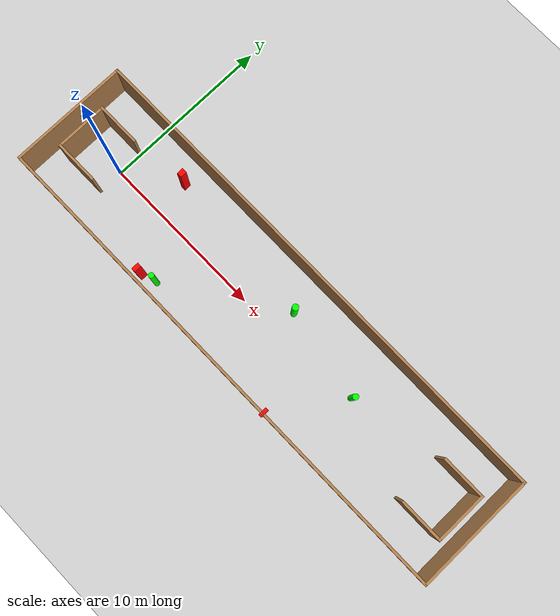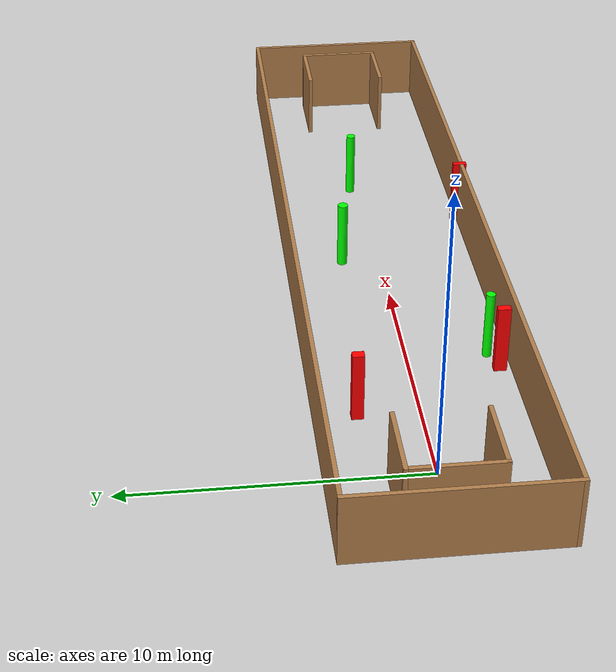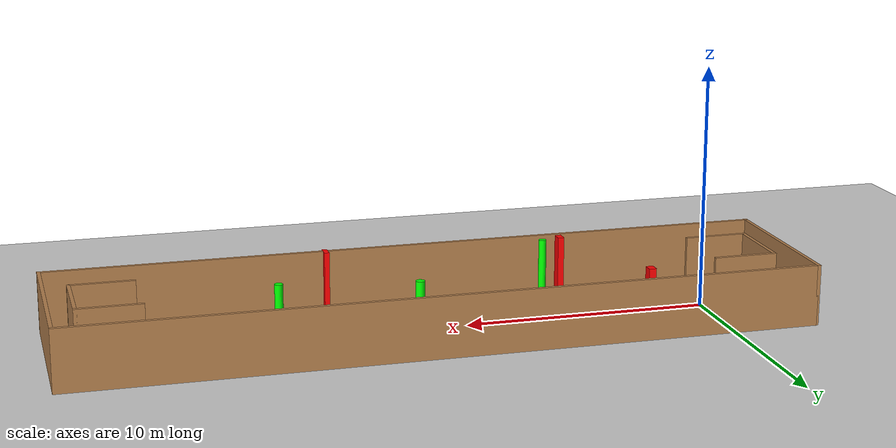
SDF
<sdf version="1.7">
 <world name="default">
  <light name="sun" type="directional">
   <pose>0 0 10 0 -0 0</pose>
   <diffuse>0.8 0.8 0.8 1</diffuse>
   <specular>0.2 0.2 0.2 1</specular>
   <attenuation>
    <range>1000</range>
    <constant>0.9</constant>
    <linear>0.01</linear>
    <quadratic>0.001</quadratic>
   </attenuation>
   <direction>-0.5 0.1 -0.9</direction>
   <spot><inner_angle>0</inner_angle><outer_angle>0</outer_angle><falloff>0</falloff></spot>
  </light>
  <model name="ground_plane">
   <static>1</static>
   <link name="link">
    <collision name="collision">
     <geometry><plane><normal>0 0 1</normal><size>100 100</size></plane></geometry>
     <surface>
      <contact><collide_bitmask>65535</collide_bitmask></contact>
      <friction><ode><mu>100</mu><mu2>50</mu2></ode></friction>
     </surface>
    </collision>
    <visual name="visual">
     <cast_shadows>0</cast_shadows>
     <geometry><plane><normal>0 0 1</normal><size>100 100</size></plane></geometry>
     <material>
      <script><uri>file://media/materials/scripts/gazebo.material</uri><name>Gazebo/Grey</name></script>
     </material>
    </visual>
   </link>
  </model>
  <gravity>0 0 -9.8</gravity>
  <magnetic_field>6e-06 2.3e-05 -4.2e-05</magnetic_field>
  <atmosphere type="adiabatic"/>
  <physics type="ode">
   <max_step_size>0.001</max_step_size>
   <real_time_factor>1</real_time_factor>
   <real_time_update_rate>1000</real_time_update_rate>
  </physics>
  <scene><ambient>0.4 0.4 0.4 1</ambient><background>0.7 0.7 0.7 1</background><shadows>1</shadows></scene>
  <spherical_coordinates>
   <surface_model>EARTH_WGS84</surface_model>
   <latitude_deg>0</latitude_deg>
   <longitude_deg>0</longitude_deg>
   <elevation>0</elevation>
   <heading_deg>0</heading_deg>
  </spherical_coordinates>
  <model name="my_base_walls">
   <link name="Wall_0">
    <collision name="Wall_0_Collision">
     <geometry><box><size>7.15 0.15 2.5</size></box></geometry>
     <pose>0 0 1.25 0 -0 0</pose>
    </collision>
    <visual name="Wall_0_Visual">
     <pose>0 0 1.25 0 -0 0</pose>
     <geometry><box><size>7.15 0.15 2.5</size></box></geometry>
     <material>
      <script><uri>file://media/materials/scripts/gazebo.material</uri><name>Gazebo/Wood</name></script>
      <ambient>1 1 1 1</ambient>
     </material>
     <meta><layer>0</layer></meta>
    </visual>
    <pose>-15 0 0 0 -0 1.5708</pose>
   </link>
   <link name="Wall_10">
    <collision name="Wall_10_Collision">
     <geometry><box><size>2.65 0.15 2.5</size></box></geometry>
     <pose>0 0 1.25 0 -0 0</pose>
    </collision>
    <visual name="Wall_10_Visual">
     <pose>0 0 1.25 0 -0 0</pose>
     <geometry><box><size>2.65 0.15 2.5</size></box></geometry>
     <material>
      <script><uri>file://media/materials/scripts/gazebo.material</uri><name>Gazebo/Wood</name></script>
      <ambient>1 1 1 1</ambient>
     </material>
     <meta><layer>0</layer></meta>
    </visual>
    <pose>-12.75 -1.5 0 0 -0 0</pose>
   </link>
   <link name="Wall_12">
    <collision name="Wall_12_Collision">
     <geometry><box><size>2.65 0.15 2.5</size></box></geometry>
     <pose>0 0 1.25 0 -0 0</pose>
    </collision>
    <visual name="Wall_12_Visual">
     <pose>0 0 1.25 0 -0 0</pose>
     <geometry><box><size>2.65 0.15 2.5</size></box></geometry>
     <material>
      <script><uri>file://media/materials/scripts/gazebo.material</uri><name>Gazebo/Wood</name></script>
      <ambient>1 1 1 1</ambient>
     </material>
     <meta><layer>0</layer></meta>
    </visual>
    <pose>-12.75 1.5 0 0 -0 0</pose>
   </link>
   <link name="Wall_14">
    <collision name="Wall_14_Collision">
     <geometry><box><size>3.15 0.15 2.5</size></box></geometry>
     <pose>0 0 1.25 0 -0 0</pose>
    </collision>
    <visual name="Wall_14_Visual">
     <pose>0 0 1.25 0 -0 0</pose>
     <geometry><box><size>3.15 0.15 2.5</size></box></geometry>
     <material>
      <script><uri>file://media/materials/scripts/gazebo.material</uri><name>Gazebo/Wood</name></script>
      <ambient>1 1 1 1</ambient>
     </material>
     <meta><layer>0</layer></meta>
    </visual>
    <pose>14 0 0 0 -0 -1.5708</pose>
   </link>
   <link name="Wall_15">
    <collision name="Wall_15_Collision">
     <geometry><box><size>2.65 0.15 2.5</size></box></geometry>
     <pose>0 0 1.25 0 -0 0</pose>
    </collision>
    <visual name="Wall_15_Visual">
     <pose>0 0 1.25 0 -0 0</pose>
     <geometry><box><size>2.65 0.15 2.5</size></box></geometry>
     <material>
      <script><uri>file://media/materials/scripts/gazebo.material</uri><name>Gazebo/Wood</name></script>
      <ambient>1 1 1 1</ambient>
     </material>
     <meta><layer>0</layer></meta>
    </visual>
    <pose>12.75 -1.5 0 0 -0 3.14159</pose>
   </link>
   <link name="Wall_17">
    <collision name="Wall_17_Collision">
     <geometry><box><size>2.65 0.15 2.5</size></box></geometry>
     <pose>0 0 1.25 0 -0 0</pose>
    </collision>
    <visual name="Wall_17_Visual">
     <pose>0 0 1.25 0 -0 0</pose>
     <geometry><box><size>2.65 0.15 2.5</size></box></geometry>
     <material>
      <script><uri>file://media/materials/scripts/gazebo.material</uri><name>Gazebo/Wood</name></script>
      <ambient>1 1 1 1</ambient>
     </material>
     <meta><layer>0</layer></meta>
    </visual>
    <pose>12.75 1.5 0 0 -0 3.14159</pose>
   </link>
   <link name="Wall_2">
    <collision name="Wall_2_Collision">
     <geometry><box><size>30.15 0.15 2.5</size></box></geometry>
     <pose>0 0 1.25 0 -0 0</pose>
    </collision>
    <visual name="Wall_2_Visual">
     <pose>0 0 1.25 0 -0 0</pose>
     <geometry><box><size>30.15 0.15 2.5</size></box></geometry>
     <material>
      <script><uri>file://media/materials/scripts/gazebo.material</uri><name>Gazebo/Wood</name></script>
      <ambient>1 1 1 1</ambient>
     </material>
     <meta><layer>0</layer></meta>
    </visual>
    <pose>-0 -3.5 0 0 -0 0</pose>
   </link>
   <link name="Wall_4">
    <collision name="Wall_4_Collision">
     <geometry><box><size>30.15 0.15 2.5</size></box></geometry>
     <pose>0 0 1.25 0 -0 0</pose>
    </collision>
    <visual name="Wall_4_Visual">
     <pose>0 0 1.25 0 -0 0</pose>
     <geometry><box><size>30.15 0.15 2.5</size></box></geometry>
     <material>
      <script><uri>file://media/materials/scripts/gazebo.material</uri><name>Gazebo/Wood</name></script>
      <ambient>1 1 1 1</ambient>
     </material>
     <meta><layer>0</layer></meta>
    </visual>
    <pose>-0 3.5 0 0 -0 0</pose>
   </link>
   <link name="Wall_6">
    <collision name="Wall_6_Collision">
     <geometry><box><size>7.15 0.15 2.5</size></box></geometry>
     <pose>0 0 1.25 0 -0 0</pose>
    </collision>
    <visual name="Wall_6_Visual">
     <pose>0 0 1.25 0 -0 0</pose>
     <geometry><box><size>7.15 0.15 2.5</size></box></geometry>
     <material>
      <script><uri>file://media/materials/scripts/gazebo.material</uri><name>Gazebo/Wood</name></script>
      <ambient>1 1 1 1</ambient>
     </material>
     <meta><layer>0</layer></meta>
    </visual>
    <pose>15 0 0 0 -0 -1.5708</pose>
   </link>
   <link name="Wall_9">
    <collision name="Wall_9_Collision">
     <geometry><box><size>3.15 0.15 2.5</size></box></geometry>
     <pose>0 0 1.25 0 -0 0</pose>
    </collision>
    <visual name="Wall_9_Visual">
     <pose>0 0 1.25 0 -0 0</pose>
     <geometry><box><size>3.15 0.15 2.5</size></box></geometry>
     <material>
      <script><uri>file://media/materials/scripts/gazebo.material</uri><name>Gazebo/Wood</name></script>
      <ambient>1 1 1 1</ambient>
     </material>
     <meta><layer>0</layer></meta>
    </visual>
    <pose>-14 0 0 0 -0 -1.5708</pose>
   </link>
   <static>1</static>
   <pose>11.5 0 0 0 -0 0</pose>
  </model>
  <model name="cylinder1">
   <static>1</static>
   <link name="link">
    <inertial>
     <mass>1</mass>
     <inertia><ixx>0.5</ixx><ixy>0</ixy><ixz>0</ixz><iyy>0.5</iyy><iyz>0</iyz><izz>1</izz></inertia>
    </inertial>
    <collision name="collision">
     <geometry><cylinder><radius>0.1684936003861495</radius><length>2.5</length></cylinder></geometry>
    </collision>
    <visual name="visual">
     <geometry><cylinder><radius>0.1684936003861495</radius><length>2.5</length></cylinder></geometry>
     <material>
      <ambient>0 1 0 1</ambient>
      <diffuse>0 1 0 1</diffuse>
      <specular>0.1 0.1 0.1 1</specular>
      <emissive>0 0 0 0</emissive>
     </material>
    </visual>
   </link>
   <pose>17.682837237782316 0.45170223559716405 1.25 0 0 0</pose>
  </model>
  <model name="cylinder2">
   <static>1</static>
   <link name="link">
    <inertial>
     <mass>1</mass>
     <inertia><ixx>0.5</ixx><ixy>0</ixy><ixz>0</ixz><iyy>0.5</iyy><iyz>0</iyz><izz>1</izz></inertia>
    </inertial>
    <collision name="collision">
     <geometry><cylinder><radius>0.18683406056518537</radius><length>2.5</length></cylinder></geometry>
    </collision>
    <visual name="visual">
     <geometry><cylinder><radius>0.18683406056518537</radius><length>2.5</length></cylinder></geometry>
     <material>
      <ambient>0 1 0 1</ambient>
      <diffuse>0 1 0 1</diffuse>
      <specular>0.1 0.1 0.1 1</specular>
      <emissive>0 0 0 0</emissive>
     </material>
    </visual>
   </link>
   <pose>12.317859481318939 1.4403488191074558 1.25 0 0 0</pose>
  </model>
  <model name="cylinder3">
   <static>1</static>
   <link name="link">
    <inertial>
     <mass>1</mass>
     <inertia><ixx>0.5</ixx><ixy>0</ixy><ixz>0</ixz><iyy>0.5</iyy><iyz>0</iyz><izz>1</izz></inertia>
    </inertial>
    <collision name="collision">
     <geometry><cylinder><radius>0.15722490995909238</radius><length>2.5</length></cylinder></geometry>
    </collision>
    <visual name="visual">
     <geometry><cylinder><radius>0.15722490995909238</radius><length>2.5</length></cylinder></geometry>
     <material>
      <ambient>0 1 0 1</ambient>
      <diffuse>0 1 0 1</diffuse>
      <specular>0.1 0.1 0.1 1</specular>
      <emissive>0 0 0 0</emissive>
     </material>
    </visual>
   </link>
   <pose>5.968807226495974 -2.7631664455719194 1.25 0 0 0</pose>
  </model>
  <model name="box1">
   <static>1</static>
   <link name="link">
    <inertial>
     <mass>1</mass>
     <inertia><ixx>0.083</ixx><ixy>0</ixy><ixz>0</ixz><iyy>0.083</iyy><iyz>0</iyz><izz>0.083</izz></inertia>
    </inertial>
    <collision name="collision">
     <geometry><box><size>0.30034625333505793 0.4015575387636835 2.5</size></box></geometry>
    </collision>
    <visual name="visual">
     <geometry><box><size>0.30034625333505793 0.4015575387636835 2.5</size></box></geometry>
     <material>
      <ambient>1 0 0 1</ambient>
      <diffuse>1 0 0 1</diffuse>
      <specular>0.1 0.1 0.1 1</specular>
      <emissive>0 0 0 0</emissive>
     </material>
    </visual>
    <sensor name="my_contact" type="contact">
     <contact><collision>box_collision</collision><topic>__default_topic__</topic></contact>
    </sensor>
   </link>
   <pose>3.057531461518291 2.1082416716058088 1.25 0 0 0</pose>
  </model>
  <model name="box2">
   <static>1</static>
   <link name="link">
    <inertial>
     <mass>1</mass>
     <inertia><ixx>0.083</ixx><ixy>0</ixy><ixz>0</ixz><iyy>0.083</iyy><iyz>0</iyz><izz>0.083</izz></inertia>
    </inertial>
    <collision name="collision">
     <geometry><box><size>0.20669332503310323 0.504340877203358 2.5</size></box></geometry>
    </collision>
    <visual name="visual">
     <geometry><box><size>0.20669332503310323 0.504340877203358 2.5</size></box></geometry>
     <material>
      <ambient>1 0 0 1</ambient>
      <diffuse>1 0 0 1</diffuse>
      <specular>0.1 0.1 0.1 1</specular>
      <emissive>0 0 0 0</emissive>
     </material>
    </visual>
    <sensor name="my_contact" type="contact">
     <contact><collision>box_collision</collision><topic>__default_topic__</topic></contact>
    </sensor>
   </link>
   <pose>15.02468038619611 -3.435522717536689 1.25 0 0 0</pose>
  </model>
  <model name="box3">
   <static>1</static>
   <link name="link">
    <inertial>
     <mass>1</mass>
     <inertia><ixx>0.083</ixx><ixy>0</ixy><ixz>0</ixz><iyy>0.083</iyy><iyz>0</iyz><izz>0.083</izz></inertia>
    </inertial>
    <collision name="collision">
     <geometry><box><size>0.25686942889552933 0.44663459687747736 2.5</size></box></geometry>
    </collision>
    <visual name="visual">
     <geometry><box><size>0.25686942889552933 0.44663459687747736 2.5</size></box></geometry>
     <material>
      <ambient>1 0 0 1</ambient>
      <diffuse>1 0 0 1</diffuse>
      <specular>0.1 0.1 0.1 1</specular>
      <emissive>0 0 0 0</emissive>
     </material>
    </visual>
    <sensor name="my_contact" type="contact">
     <contact><collision>box_collision</collision><topic>__default_topic__</topic></contact>
    </sensor>
   </link>
   <pose>5.131114898272751 -3.0342725004509035 1.25 0 0 0</pose>
  </model>
 </world>
</sdf>
